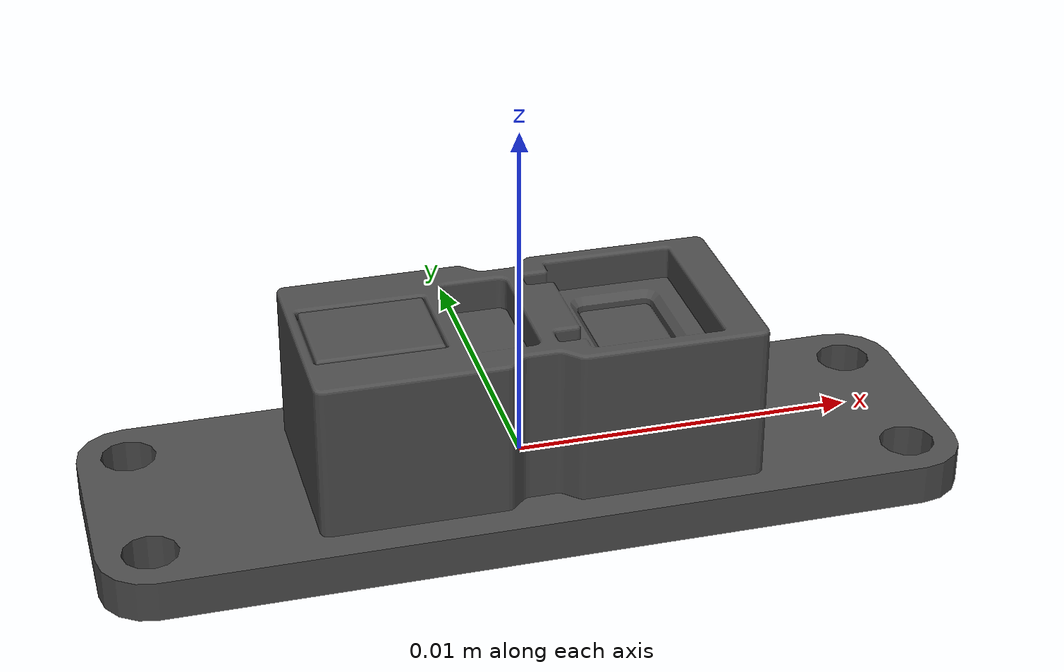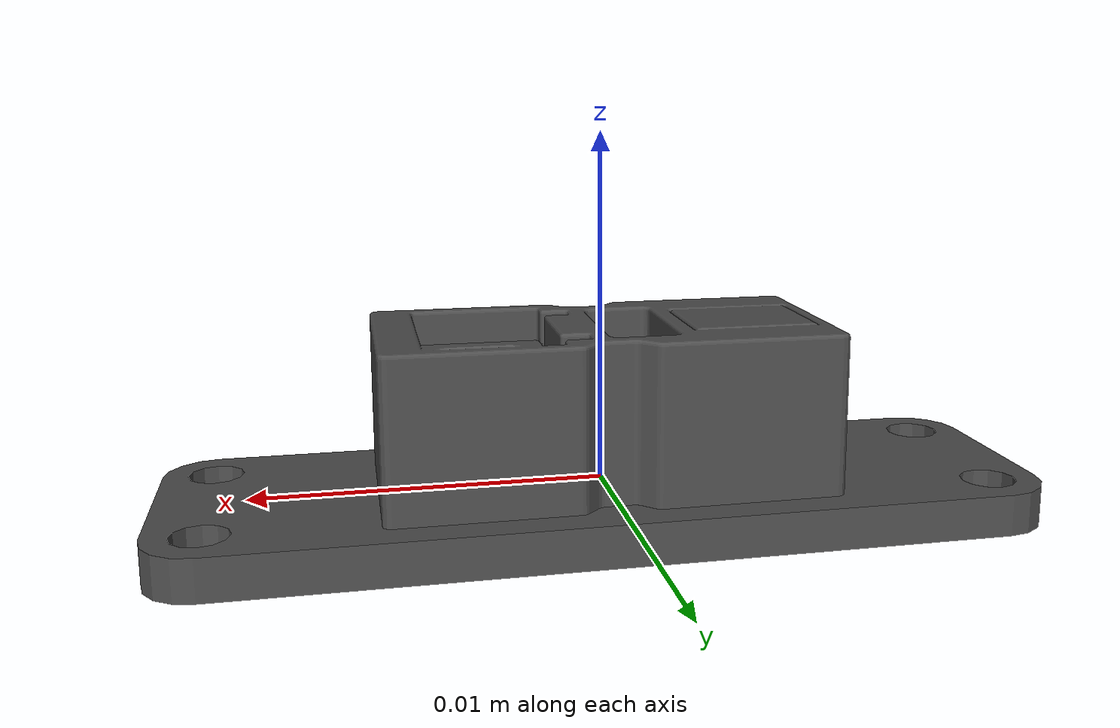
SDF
<?xml version="1.0" ?>
<sdf version="1.6">
  <model name="hyp_model_downtof">
    <link name="link">
      <pose>0 0 0 0 0 0</pose>
      <inertial>
        <pose>0 0 0 0 0 0</pose>
        <mass>0.01</mass>
        <inertia>
          <ixx>1e-05</ixx>
          <ixy>0</ixy>
          <ixz>0</ixz>
          <iyy>1e-05</iyy>
          <iyz>0</iyz>
          <izz>1e-05</izz>
        </inertia>
      </inertial>

      <!-- Collision: simple geometry for physics -->
      <collision name="collision">
        <geometry>
          <cylinder>
            <radius>0.01</radius>
            <length>0.002</length>
          </cylinder>
        </geometry>
      </collision>

      <!-- Visual: STL mesh (kept the same enclosure/appearance) -->
      <visual name="visual">
        <geometry>
          <mesh>
            <!-- Place tof.stl at models/hyp_model_downtof/meshes/tof.stl -->
            <uri>model://hyp_model_downtof/meshes/tof.stl</uri>
            <scale>1 1 1</scale>
          </mesh>
        </geometry>
        <material>
          <script>
            <name>Gazebo/DarkGrey</name>
            <uri>file://media/materials/scripts/gazebo.material</uri>
          </script>
        </material>
      </visual>

      <!-- Downward sonar/range sensor -->
      <sensor name="down_sonar" type="ray">
        <always_on>1</always_on>
        <visualize>1</visualize>
        <update_rate>30</update_rate>

        <!-- Aim straight down (pitch = +90°) -->
        <pose>0 0 0 0 1.5708 0</pose>

        <ray>
          <scan>
            <horizontal>
              <samples>5</samples>
              <resolution>1</resolution>
              <min_angle>-0.01745</min_angle>
              <max_angle> 0.01745</max_angle>
            </horizontal>
            <vertical>
              <samples>3</samples>
              <resolution>1</resolution>
              <min_angle>-0.01745</min_angle>
              <max_angle> 0.01745</max_angle>
            </vertical>
          </scan>

          <range>
            <min>0.01</min>
            <max>20.0</max>
            <resolution>0.01</resolution>
          </range>

          <noise type="gaussian">
            <mean>0.0</mean>
            <stddev>0.01</stddev>
          </noise>
        </ray>

        <plugin name="down_tof" filename="libgazebo_ros_ray_sensor.so">
          <ros>
            <namespace>/sonar</namespace>
          </ros>
          <topicName>down</topicName>
          <frameName>sonar/down_tof</frameName>
          <radiation>ultrasound</radiation>
          <output_type>sensor_msgs/Range</output_type>
          <gaussianNoise>0.01</gaussianNoise>
        </plugin>
      </sensor>
    </link>
  </model>
</sdf>
